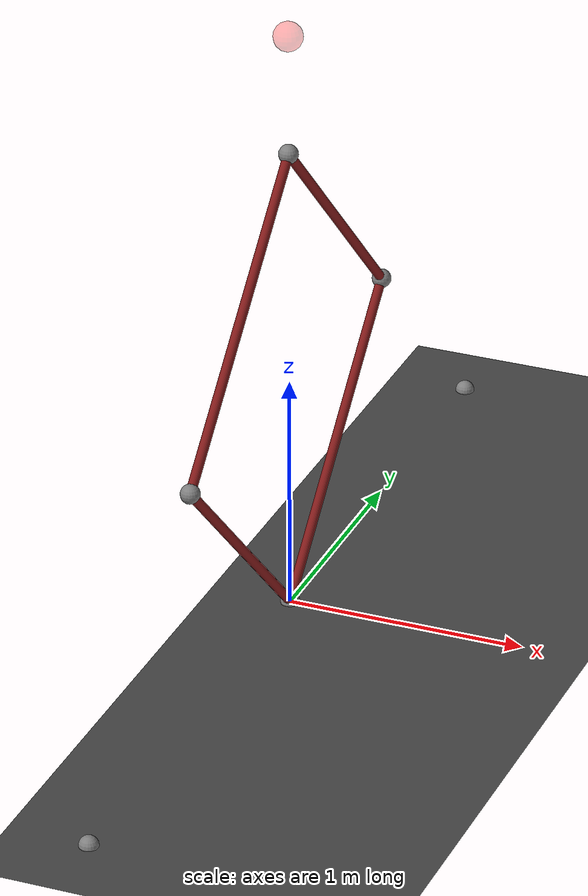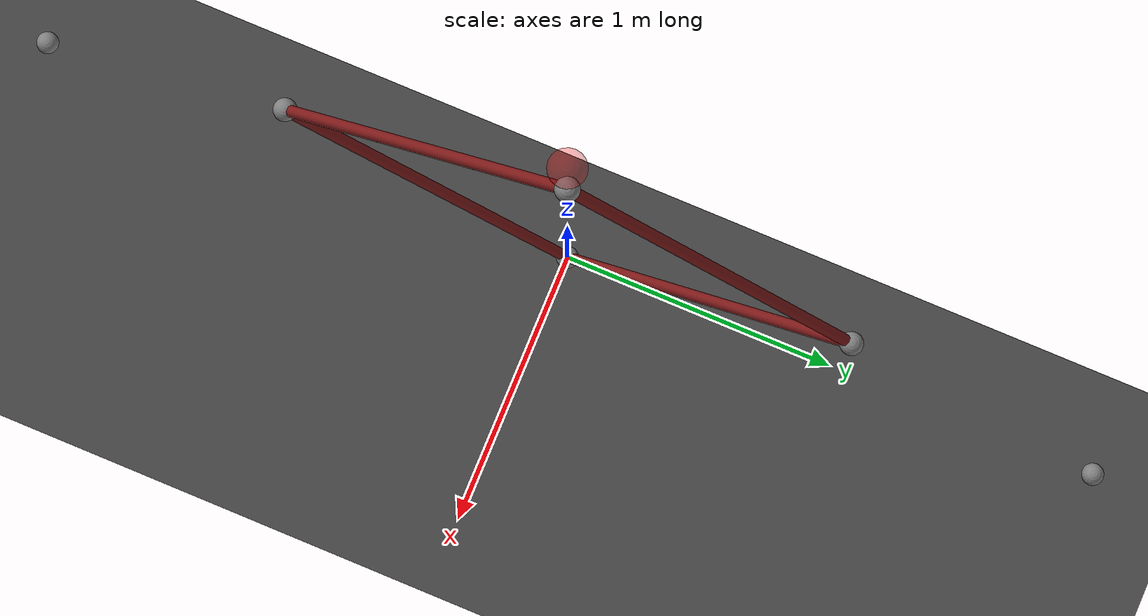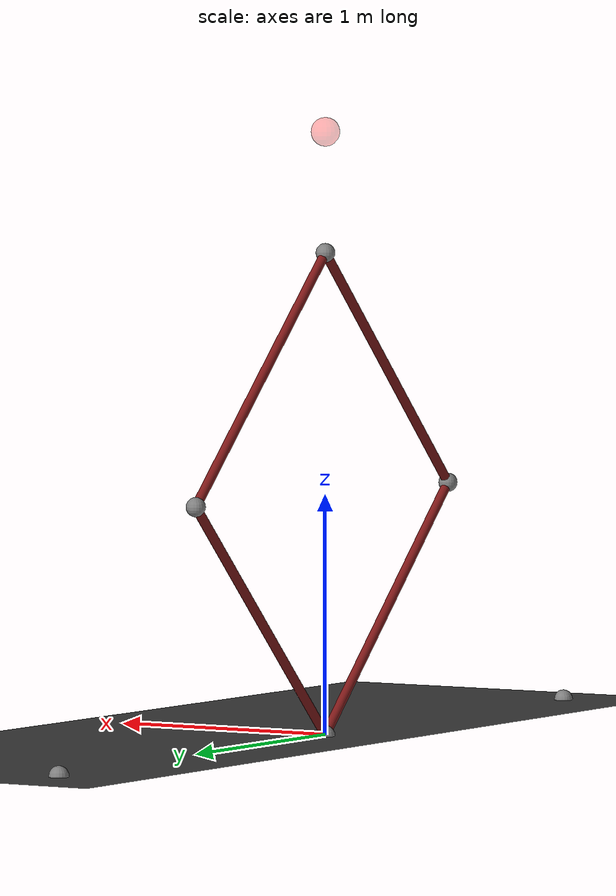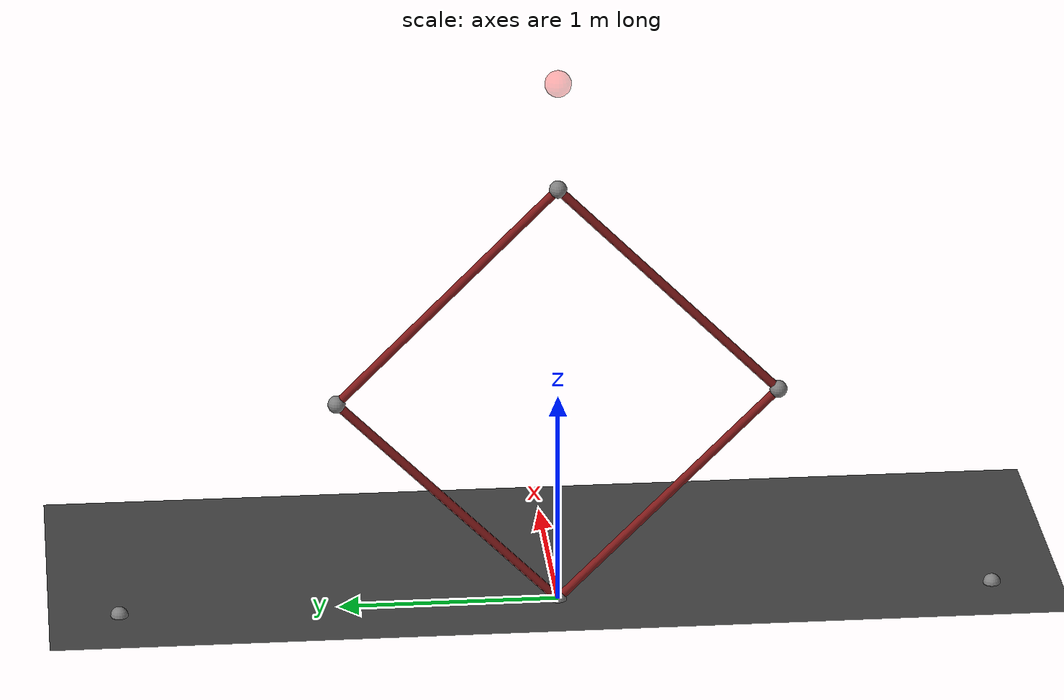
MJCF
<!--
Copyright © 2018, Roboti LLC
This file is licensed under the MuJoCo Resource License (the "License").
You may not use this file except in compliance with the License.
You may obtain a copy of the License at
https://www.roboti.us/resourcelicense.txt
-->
<mujoco model="dbar">

    <option timestep="0.01" iterations="50" solver="Newton" tolerance="1e-10" gravity = "0 0 0" collision="predefined" viscosity=".5"/>

    <size njmax="100" nconmax="20" nstack="400"/>

    <visual>
        <rgba haze=".3 .3 .3 1"/>
    </visual>

    <default>
        <joint type="hinge" pos="0 0 0" axis="1 0 0" limited="false" range="-180 180" damping="0"/>
        <position ctrllimited="false" ctrlrange="-1 1"/>
		<tendon stiffness="0" damping="2"/>
		<geom size="0.02"/>
		<site size="0.04"/>
    </default>

    <asset>
        <texture type="skybox" builtin="gradient" rgb1="0.6 0.6 0.6" rgb2="0 0 0" width="512" height="512"/>
        <texture name="texplane" type="2d" builtin="checker" rgb1=".25 .25 .25" rgb2=".3 .3 .3" width="512" height="512" mark="cross" markrgb=".8 .8 .8"/>
        <material name="matplane" reflectance="0.3" texture="texplane" texrepeat="1 1" texuniform="true"/>
    </asset>

    <worldbody>
        <geom name="floor" pos="0 0 0" size="0 0 1" type="plane" material="matplane"/>
        <light directional="true" diffuse=".8 .8 .8" specular=".2 .2 .2" pos="0 0 5" dir="0 0 -1"/>

        <site name="s0" pos="0 0 0"/>
		<site name="s4" pos="0 2 0"/>
		<site name="s5" pos="0 -2 0"/>
        <site name="target" pos="0 0 2.5" size="0.06" rgba="1 0 0 .3"/>

        <body pos="0 0 0">
            <geom name="bar1" type="capsule" fromto="0 0 0  0 -1 1" rgba=".5 .1 .1 1" mass="1"/>
            <site name="b1s" pos="0 0 0"/>
			<site name="b1e" pos="0 -1 1"/>
			<joint name="bottom"/>
            <body pos="0 -1 1">
                <geom name="bar2" type="capsule" fromto="0 0 0  0 1 1" rgba=".5 .1 .1 1" mass="1"/>
                <joint name="left"/>
                <site name="b2e" pos="0 1 1"/>
				<body name="bar3" pos="0 1 1">
					<geom name="bar3" type="capsule" fromto="0 0 0  0 1 -1" rgba=".5 .1 .1 1" mass="1"/>
					<joint name="top"/>
					<site name="b3e" pos="0 1 -1"/>
                    <body name="bar4" pos="0 1 -1">
                        <geom name="bar4" type="capsule" fromto="0 0 0  0 -1 -1" rgba=".5 .1 .1 1" mass="1"/>
                        <joint name="right"/>
                        <joint name="bottom2" pos="0 -1 -1"/>
                    </body>
				</body>
            </body>

        </body>
    </worldbody>

</mujoco>
